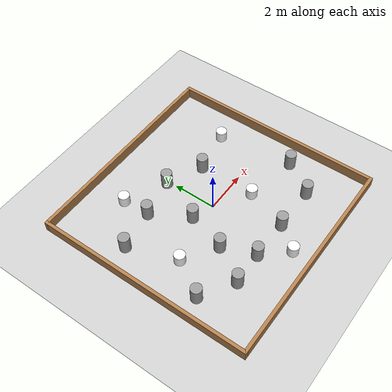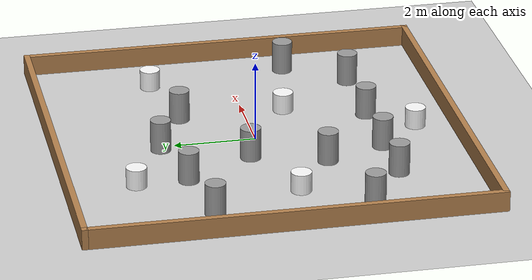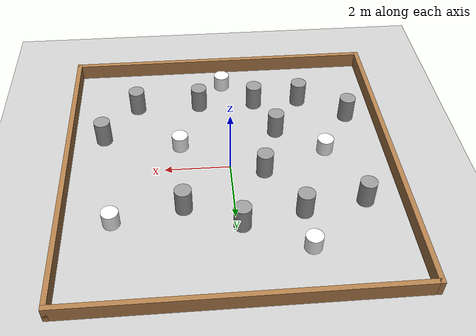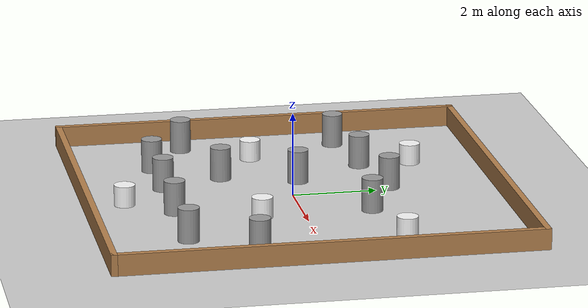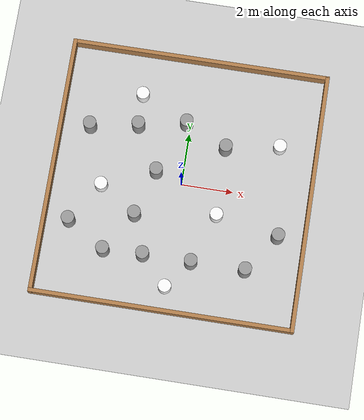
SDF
<sdf version="1.7">
 <world name="default">
  <light name="sun" type="directional">
   <pose>0 0 10 0 -0 0</pose>
   <diffuse>0.8 0.8 0.8 1</diffuse>
   <specular>0.2 0.2 0.2 1</specular>
   <attenuation>
    <range>1000</range>
    <constant>0.9</constant>
    <linear>0.01</linear>
    <quadratic>0.001</quadratic>
   </attenuation>
   <direction>-0.5 0.1 -0.9</direction>
   <spot><inner_angle>0</inner_angle><outer_angle>0</outer_angle><falloff>0</falloff></spot>
  </light>
  <model name="ground_plane">
   <static>1</static>
   <link name="link">
    <collision name="collision">
     <geometry><plane><normal>0 0 1</normal><size>100 100</size></plane></geometry>
     <surface>
      <contact><collide_bitmask>65535</collide_bitmask></contact>
      <friction><ode><mu>100</mu><mu2>50</mu2></ode></friction>
     </surface>
    </collision>
    <visual name="visual">
     <cast_shadows>0</cast_shadows>
     <geometry><plane><normal>0 0 1</normal><size>100 100</size></plane></geometry>
     <material>
      <script><uri>file://media/materials/scripts/gazebo.material</uri><name>Gazebo/Grey</name></script>
     </material>
    </visual>
   </link>
  </model>
  <gravity>0 0 -9.8</gravity>
  <magnetic_field>6e-06 2.3e-05 -4.2e-05</magnetic_field>
  <atmosphere type="adiabatic"/>
  <physics type="ode">
   <max_step_size>0.001</max_step_size>
   <real_time_factor>1</real_time_factor>
   <real_time_update_rate>1000</real_time_update_rate>
  </physics>
  <scene><ambient>0.4 0.4 0.4 1</ambient><background>0.7 0.7 0.7 1</background><shadows>1</shadows></scene>
  <audio><device>default</device></audio>
  <spherical_coordinates>
   <surface_model>EARTH_WGS84</surface_model>
   <latitude_deg>0</latitude_deg>
   <longitude_deg>0</longitude_deg>
   <elevation>0</elevation>
   <heading_deg>0</heading_deg>
  </spherical_coordinates>
  <model name="wall_square10x10">
   <pose>0 1.25 0 0 -0 0</pose>
   <link name="Wall_10">
    <collision name="Wall_10_Collision">
     <geometry><box><size>10 0.15 0.5</size></box></geometry>
     <pose>0 0 0.25 0 -0 0</pose>
    </collision>
    <visual name="Wall_10_Visual">
     <pose>0 0 0.25 0 -0 0</pose>
     <geometry><box><size>10 0.15 0.5</size></box></geometry>
     <material>
      <script><uri>file://media/materials/scripts/gazebo.material</uri><name>Gazebo/Wood</name></script>
      <ambient>1 1 1 1</ambient>
     </material>
     <meta><layer>0</layer></meta>
    </visual>
    <pose>0 -6.183 0 0 -0 3.14159</pose>
   </link>
   <link name="Wall_6">
    <collision name="Wall_6_Collision">
     <geometry><box><size>10 0.15 0.5</size></box></geometry>
     <pose>0 0 0.25 0 -0 0</pose>
    </collision>
    <visual name="Wall_6_Visual">
     <pose>0 0 0.25 0 -0 0</pose>
     <geometry><box><size>10 0.15 0.5</size></box></geometry>
     <material>
      <script><uri>file://media/materials/scripts/gazebo.material</uri><name>Gazebo/Wood</name></script>
      <ambient>1 1 1 1</ambient>
     </material>
     <meta><layer>0</layer></meta>
    </visual>
    <pose>-4.925 -1.258 0 0 -0 -1.5708</pose>
   </link>
   <link name="Wall_8">
    <collision name="Wall_8_Collision">
     <geometry><box><size>10 0.15 0.5</size></box></geometry>
     <pose>0 0 0.25 0 -0 0</pose>
    </collision>
    <visual name="Wall_8_Visual">
     <pose>0 0 0.25 0 -0 0</pose>
     <geometry><box><size>10 0.15 0.5</size></box></geometry>
     <material>
      <script><uri>file://media/materials/scripts/gazebo.material</uri><name>Gazebo/Wood</name></script>
      <ambient>1 1 1 1</ambient>
     </material>
     <meta><layer>0</layer></meta>
    </visual>
    <pose>0 3.667 0 0 -0 0</pose>
   </link>
   <link name="Wall_9">
    <collision name="Wall_9_Collision">
     <geometry><box><size>10 0.15 0.5</size></box></geometry>
     <pose>0 0 0.25 0 -0 0</pose>
    </collision>
    <visual name="Wall_9_Visual">
     <pose>0 0 0.25 0 -0 0</pose>
     <geometry><box><size>10 0.15 0.5</size></box></geometry>
     <material>
      <script><uri>file://media/materials/scripts/gazebo.material</uri><name>Gazebo/Wood</name></script>
      <ambient>1 1 1 1</ambient>
     </material>
     <meta><layer>0</layer></meta>
    </visual>
    <pose>4.925 -1.258 0 0 -0 -1.5708</pose>
   </link>
   <static>1</static>
  </model>
  <model name="unit_cylinder">
   <link name="link">
    <inertial>
     <mass>1</mass>
     <inertia><ixx>0.145833</ixx><ixy>0</ixy><ixz>0</ixz><iyy>0.145833</iyy><iyz>0</iyz><izz>0.125</izz></inertia>
    </inertial>
    <pose>0 -0 -0.1 0 -0 0</pose>
    <visual name="visual">
     <geometry><cylinder><radius>0.25</radius><length>0.8</length></cylinder></geometry>
     <material>
      <script><name>Gazebo/Grey</name><uri>file://media/materials/scripts/gazebo.material</uri></script>
      <shader type="pixel"><normal_map>__default__</normal_map></shader>
      <ambient>0.1 0.1 0.1 1</ambient>
      <diffuse>0.7 0.7 0.7 1</diffuse>
      <specular>0.01 0.01 0.01 1</specular>
      <emissive>0 0 0 1</emissive>
     </material>
    </visual>
    <collision name="collision">
     <geometry><cylinder><radius>0.25</radius><length>0.8</length></cylinder></geometry>
     <surface>
      <friction>
       <ode><mu>1</mu><mu2>1</mu2><fdir1>0 0 0</fdir1><slip1>0</slip1><slip2>0</slip2></ode>
       <torsional>
        <coefficient>1</coefficient>
        <patch_radius>0</patch_radius>
        <surface_radius>0</surface_radius>
        <use_patch_radius>1</use_patch_radius>
        <ode><slip>0</slip></ode>
       </torsional>
      </friction>
      <bounce><restitution_coefficient>0</restitution_coefficient><threshold>1e+06</threshold></bounce>
      <contact>
       <collide_without_contact>0</collide_without_contact>
       <collide_without_contact_bitmask>1</collide_without_contact_bitmask>
       <collide_bitmask>1</collide_bitmask>
       <ode>
        <soft_cfm>0</soft_cfm>
        <soft_erp>0.2</soft_erp>
        <kp>1e+13</kp>
        <kd>1</kd>
        <max_vel>0.01</max_vel>
        <min_depth>0</min_depth>
       </ode>
       <bullet>
        <split_impulse>1</split_impulse>
        <split_impulse_penetration_threshold>-0.01</split_impulse_penetration_threshold>
        <soft_cfm>0</soft_cfm>
        <soft_erp>0.2</soft_erp>
        <kp>1e+13</kp>
        <kd>1</kd>
       </bullet>
      </contact>
     </surface>
    </collision>
   </link>
   <static>0</static>
   <pose>-2.51473 -2.98062 0.499992 -1e-06 1e-06 0</pose>
  </model>
  <model name="unit_cylinder_0">
   <link name="link">
    <inertial>
     <mass>1</mass>
     <inertia><ixx>0.145833</ixx><ixy>0</ixy><ixz>0</ixz><iyy>0.145833</iyy><iyz>0</iyz><izz>0.125</izz></inertia>
    </inertial>
    <pose>0 -0 -0.1 0 -0 0</pose>
    <visual name="visual">
     <geometry><cylinder><radius>0.25</radius><length>0.8</length></cylinder></geometry>
     <material>
      <script><name>Gazebo/Grey</name><uri>file://media/materials/scripts/gazebo.material</uri></script>
      <shader type="pixel"><normal_map>__default__</normal_map></shader>
      <ambient>0.1 0.1 0.1 1</ambient>
      <diffuse>0.7 0.7 0.7 1</diffuse>
      <specular>0.01 0.01 0.01 1</specular>
      <emissive>0 0 0 1</emissive>
     </material>
    </visual>
    <collision name="collision">
     <geometry><cylinder><radius>0.25</radius><length>0.8</length></cylinder></geometry>
     <surface>
      <friction>
       <ode><mu>1</mu><mu2>1</mu2><fdir1>0 0 0</fdir1><slip1>0</slip1><slip2>0</slip2></ode>
       <torsional>
        <coefficient>1</coefficient>
        <patch_radius>0</patch_radius>
        <surface_radius>0</surface_radius>
        <use_patch_radius>1</use_patch_radius>
        <ode><slip>0</slip></ode>
       </torsional>
      </friction>
      <bounce><restitution_coefficient>0</restitution_coefficient><threshold>1e+06</threshold></bounce>
      <contact>
       <collide_without_contact>0</collide_without_contact>
       <collide_without_contact_bitmask>1</collide_without_contact_bitmask>
       <collide_bitmask>1</collide_bitmask>
       <ode>
        <soft_cfm>0</soft_cfm>
        <soft_erp>0.2</soft_erp>
        <kp>1e+13</kp>
        <kd>1</kd>
        <max_vel>0.01</max_vel>
        <min_depth>0</min_depth>
       </ode>
       <bullet>
        <split_impulse>1</split_impulse>
        <split_impulse_penetration_threshold>-0.01</split_impulse_penetration_threshold>
        <soft_cfm>0</soft_cfm>
        <soft_erp>0.2</soft_erp>
        <kp>1e+13</kp>
        <kd>1</kd>
       </bullet>
      </contact>
     </surface>
    </collision>
   </link>
   <static>0</static>
   <pose>-1.00966 -2.93541 0.499992 -1e-06 1e-06 0</pose>
  </model>
  <model name="unit_cylinder_1">
   <link name="link">
    <inertial>
     <mass>1</mass>
     <inertia><ixx>0.145833</ixx><ixy>0</ixy><ixz>0</ixz><iyy>0.145833</iyy><iyz>0</iyz><izz>0.125</izz></inertia>
    </inertial>
    <pose>0 -0 -0.1 0 -0 0</pose>
    <visual name="visual">
     <geometry><cylinder><radius>0.25</radius><length>0.8</length></cylinder></geometry>
     <material>
      <script><name>Gazebo/Grey</name><uri>file://media/materials/scripts/gazebo.material</uri></script>
      <shader type="pixel"><normal_map>__default__</normal_map></shader>
      <ambient>0.1 0.1 0.1 1</ambient>
      <diffuse>0.7 0.7 0.7 1</diffuse>
      <specular>0.01 0.01 0.01 1</specular>
      <emissive>0 0 0 1</emissive>
     </material>
    </visual>
    <collision name="collision">
     <geometry><cylinder><radius>0.25</radius><length>0.8</length></cylinder></geometry>
     <surface>
      <friction>
       <ode><mu>1</mu><mu2>1</mu2><fdir1>0 0 0</fdir1><slip1>0</slip1><slip2>0</slip2></ode>
       <torsional>
        <coefficient>1</coefficient>
        <patch_radius>0</patch_radius>
        <surface_radius>0</surface_radius>
        <use_patch_radius>1</use_patch_radius>
        <ode><slip>0</slip></ode>
       </torsional>
      </friction>
      <bounce><restitution_coefficient>0</restitution_coefficient><threshold>1e+06</threshold></bounce>
      <contact>
       <collide_without_contact>0</collide_without_contact>
       <collide_without_contact_bitmask>1</collide_without_contact_bitmask>
       <collide_bitmask>1</collide_bitmask>
       <ode>
        <soft_cfm>0</soft_cfm>
        <soft_erp>0.2</soft_erp>
        <kp>1e+13</kp>
        <kd>1</kd>
        <max_vel>0.01</max_vel>
        <min_depth>0</min_depth>
       </ode>
       <bullet>
        <split_impulse>1</split_impulse>
        <split_impulse_penetration_threshold>-0.01</split_impulse_penetration_threshold>
        <soft_cfm>0</soft_cfm>
        <soft_erp>0.2</soft_erp>
        <kp>1e+13</kp>
        <kd>1</kd>
       </bullet>
      </contact>
     </surface>
    </collision>
   </link>
   <static>0</static>
   <pose>0.821013 -2.94461 0.499992 -1e-06 1e-06 0</pose>
  </model>
  <model name="unit_cylinder_2">
   <link name="link">
    <inertial>
     <mass>1</mass>
     <inertia><ixx>0.145833</ixx><ixy>0</ixy><ixz>0</ixz><iyy>0.145833</iyy><iyz>0</iyz><izz>0.125</izz></inertia>
    </inertial>
    <pose>0 -0 -0.1 0 -0 0</pose>
    <visual name="visual">
     <geometry><cylinder><radius>0.25</radius><length>0.8</length></cylinder></geometry>
     <material>
      <script><name>Gazebo/Grey</name><uri>file://media/materials/scripts/gazebo.material</uri></script>
      <shader type="pixel"><normal_map>__default__</normal_map></shader>
      <ambient>0.1 0.1 0.1 1</ambient>
      <diffuse>0.7 0.7 0.7 1</diffuse>
      <specular>0.01 0.01 0.01 1</specular>
      <emissive>0 0 0 1</emissive>
     </material>
    </visual>
    <collision name="collision">
     <geometry><cylinder><radius>0.25</radius><length>0.8</length></cylinder></geometry>
     <surface>
      <friction>
       <ode><mu>1</mu><mu2>1</mu2><fdir1>0 0 0</fdir1><slip1>0</slip1><slip2>0</slip2></ode>
       <torsional>
        <coefficient>1</coefficient>
        <patch_radius>0</patch_radius>
        <surface_radius>0</surface_radius>
        <use_patch_radius>1</use_patch_radius>
        <ode><slip>0</slip></ode>
       </torsional>
      </friction>
      <bounce><restitution_coefficient>0</restitution_coefficient><threshold>1e+06</threshold></bounce>
      <contact>
       <collide_without_contact>0</collide_without_contact>
       <collide_without_contact_bitmask>1</collide_without_contact_bitmask>
       <collide_bitmask>1</collide_bitmask>
       <ode>
        <soft_cfm>0</soft_cfm>
        <soft_erp>0.2</soft_erp>
        <kp>1e+13</kp>
        <kd>1</kd>
        <max_vel>0.01</max_vel>
        <min_depth>0</min_depth>
       </ode>
       <bullet>
        <split_impulse>1</split_impulse>
        <split_impulse_penetration_threshold>-0.01</split_impulse_penetration_threshold>
        <soft_cfm>0</soft_cfm>
        <soft_erp>0.2</soft_erp>
        <kp>1e+13</kp>
        <kd>1</kd>
       </bullet>
      </contact>
     </surface>
    </collision>
   </link>
   <static>0</static>
   <pose>2.86783 -2.94009 0.499992 -1e-06 1e-06 0</pose>
  </model>
  <model name="unit_cylinder_3">
   <link name="link">
    <inertial>
     <mass>1</mass>
     <inertia><ixx>0.145833</ixx><ixy>0</ixy><ixz>0</ixz><iyy>0.145833</iyy><iyz>0</iyz><izz>0.125</izz></inertia>
    </inertial>
    <pose>0 -0 -0.1 0 -0 0</pose>
    <visual name="visual">
     <geometry><cylinder><radius>0.25</radius><length>0.8</length></cylinder></geometry>
     <material>
      <script><name>Gazebo/Grey</name><uri>file://media/materials/scripts/gazebo.material</uri></script>
      <shader type="pixel"><normal_map>__default__</normal_map></shader>
      <ambient>0.1 0.1 0.1 1</ambient>
      <diffuse>0.7 0.7 0.7 1</diffuse>
      <specular>0.01 0.01 0.01 1</specular>
      <emissive>0 0 0 1</emissive>
     </material>
    </visual>
    <collision name="collision">
     <geometry><cylinder><radius>0.25</radius><length>0.8</length></cylinder></geometry>
     <surface>
      <friction>
       <ode><mu>1</mu><mu2>1</mu2><fdir1>0 0 0</fdir1><slip1>0</slip1><slip2>0</slip2></ode>
       <torsional>
        <coefficient>1</coefficient>
        <patch_radius>0</patch_radius>
        <surface_radius>0</surface_radius>
        <use_patch_radius>1</use_patch_radius>
        <ode><slip>0</slip></ode>
       </torsional>
      </friction>
      <bounce><restitution_coefficient>0</restitution_coefficient><threshold>1e+06</threshold></bounce>
      <contact>
       <collide_without_contact>0</collide_without_contact>
       <collide_without_contact_bitmask>1</collide_without_contact_bitmask>
       <collide_bitmask>1</collide_bitmask>
       <ode>
        <soft_cfm>0</soft_cfm>
        <soft_erp>0.2</soft_erp>
        <kp>1e+13</kp>
        <kd>1</kd>
        <max_vel>0.01</max_vel>
        <min_depth>0</min_depth>
       </ode>
       <bullet>
        <split_impulse>1</split_impulse>
        <split_impulse_penetration_threshold>-0.01</split_impulse_penetration_threshold>
        <soft_cfm>0</soft_cfm>
        <soft_erp>0.2</soft_erp>
        <kp>1e+13</kp>
        <kd>1</kd>
       </bullet>
      </contact>
     </surface>
    </collision>
   </link>
   <static>0</static>
   <pose>-3.98097 -2.05423 0.499992 -1e-06 1e-06 0</pose>
  </model>
  <model name="unit_cylinder_4">
   <link name="link">
    <inertial>
     <mass>1</mass>
     <inertia><ixx>0.145833</ixx><ixy>0</ixy><ixz>0</ixz><iyy>0.145833</iyy><iyz>0</iyz><izz>0.125</izz></inertia>
    </inertial>
    <pose>0 -0 -0.1 0 -0 0</pose>
    <visual name="visual">
     <geometry><cylinder><radius>0.25</radius><length>0.8</length></cylinder></geometry>
     <material>
      <script><name>Gazebo/Grey</name><uri>file://media/materials/scripts/gazebo.material</uri></script>
      <shader type="pixel"><normal_map>__default__</normal_map></shader>
      <ambient>0.1 0.1 0.1 1</ambient>
      <diffuse>0.7 0.7 0.7 1</diffuse>
      <specular>0.01 0.01 0.01 1</specular>
      <emissive>0 0 0 1</emissive>
     </material>
    </visual>
    <collision name="collision">
     <geometry><cylinder><radius>0.25</radius><length>0.8</length></cylinder></geometry>
     <surface>
      <friction>
       <ode><mu>1</mu><mu2>1</mu2><fdir1>0 0 0</fdir1><slip1>0</slip1><slip2>0</slip2></ode>
       <torsional>
        <coefficient>1</coefficient>
        <patch_radius>0</patch_radius>
        <surface_radius>0</surface_radius>
        <use_patch_radius>1</use_patch_radius>
        <ode><slip>0</slip></ode>
       </torsional>
      </friction>
      <bounce><restitution_coefficient>0</restitution_coefficient><threshold>1e+06</threshold></bounce>
      <contact>
       <collide_without_contact>0</collide_without_contact>
       <collide_without_contact_bitmask>1</collide_without_contact_bitmask>
       <collide_bitmask>1</collide_bitmask>
       <ode>
        <soft_cfm>0</soft_cfm>
        <soft_erp>0.2</soft_erp>
        <kp>1e+13</kp>
        <kd>1</kd>
        <max_vel>0.01</max_vel>
        <min_depth>0</min_depth>
       </ode>
       <bullet>
        <split_impulse>1</split_impulse>
        <split_impulse_penetration_threshold>-0.01</split_impulse_penetration_threshold>
        <soft_cfm>0</soft_cfm>
        <soft_erp>0.2</soft_erp>
        <kp>1e+13</kp>
        <kd>1</kd>
       </bullet>
      </contact>
     </surface>
    </collision>
   </link>
   <static>0</static>
   <pose>-1.56528 -1.46226 0.499998 1e-06 -1e-06 0</pose>
  </model>
  <model name="unit_cylinder_5">
   <link name="link">
    <inertial>
     <mass>1</mass>
     <inertia><ixx>0.145833</ixx><ixy>0</ixy><ixz>0</ixz><iyy>0.145833</iyy><iyz>0</iyz><izz>0.125</izz></inertia>
    </inertial>
    <pose>0 -0 -0.1 0 -0 0</pose>
    <visual name="visual">
     <geometry><cylinder><radius>0.25</radius><length>0.8</length></cylinder></geometry>
     <material>
      <script><name>Gazebo/Grey</name><uri>file://media/materials/scripts/gazebo.material</uri></script>
      <shader type="pixel"><normal_map>__default__</normal_map></shader>
      <ambient>0.1 0.1 0.1 1</ambient>
      <diffuse>0.7 0.7 0.7 1</diffuse>
      <specular>0.01 0.01 0.01 1</specular>
      <emissive>0 0 0 1</emissive>
     </material>
    </visual>
    <collision name="collision">
     <geometry><cylinder><radius>0.25</radius><length>0.8</length></cylinder></geometry>
     <surface>
      <friction>
       <ode><mu>1</mu><mu2>1</mu2><fdir1>0 0 0</fdir1><slip1>0</slip1><slip2>0</slip2></ode>
       <torsional>
        <coefficient>1</coefficient>
        <patch_radius>0</patch_radius>
        <surface_radius>0</surface_radius>
        <use_patch_radius>1</use_patch_radius>
        <ode><slip>0</slip></ode>
       </torsional>
      </friction>
      <bounce><restitution_coefficient>0</restitution_coefficient><threshold>1e+06</threshold></bounce>
      <contact>
       <collide_without_contact>0</collide_without_contact>
       <collide_without_contact_bitmask>1</collide_without_contact_bitmask>
       <collide_bitmask>1</collide_bitmask>
       <ode>
        <soft_cfm>0</soft_cfm>
        <soft_erp>0.2</soft_erp>
        <kp>1e+13</kp>
        <kd>1</kd>
        <max_vel>0.01</max_vel>
        <min_depth>0</min_depth>
       </ode>
       <bullet>
        <split_impulse>1</split_impulse>
        <split_impulse_penetration_threshold>-0.01</split_impulse_penetration_threshold>
        <soft_cfm>0</soft_cfm>
        <soft_erp>0.2</soft_erp>
        <kp>1e+13</kp>
        <kd>1</kd>
       </bullet>
      </contact>
     </surface>
    </collision>
   </link>
   <static>0</static>
   <pose>-1.01294 0.314688 0.499998 1e-06 1e-06 0</pose>
  </model>
  <model name="unit_cylinder_6">
   <link name="link">
    <inertial>
     <mass>1</mass>
     <inertia><ixx>0.145833</ixx><ixy>0</ixy><ixz>0</ixz><iyy>0.145833</iyy><iyz>0</iyz><izz>0.125</izz></inertia>
    </inertial>
    <pose>0 -0 -0.1 0 -0 0</pose>
    <visual name="visual">
     <geometry><cylinder><radius>0.25</radius><length>0.8</length></cylinder></geometry>
     <material>
      <script><name>Gazebo/Grey</name><uri>file://media/materials/scripts/gazebo.material</uri></script>
      <shader type="pixel"><normal_map>__default__</normal_map></shader>
      <ambient>0.1 0.1 0.1 1</ambient>
      <diffuse>0.7 0.7 0.7 1</diffuse>
      <specular>0.01 0.01 0.01 1</specular>
      <emissive>0 0 0 1</emissive>
     </material>
    </visual>
    <collision name="collision">
     <geometry><cylinder><radius>0.25</radius><length>0.8</length></cylinder></geometry>
     <surface>
      <friction>
       <ode><mu>1</mu><mu2>1</mu2><fdir1>0 0 0</fdir1><slip1>0</slip1><slip2>0</slip2></ode>
       <torsional>
        <coefficient>1</coefficient>
        <patch_radius>0</patch_radius>
        <surface_radius>0</surface_radius>
        <use_patch_radius>1</use_patch_radius>
        <ode><slip>0</slip></ode>
       </torsional>
      </friction>
      <bounce><restitution_coefficient>0</restitution_coefficient><threshold>1e+06</threshold></bounce>
      <contact>
       <collide_without_contact>0</collide_without_contact>
       <collide_without_contact_bitmask>1</collide_without_contact_bitmask>
       <collide_bitmask>1</collide_bitmask>
       <ode>
        <soft_cfm>0</soft_cfm>
        <soft_erp>0.2</soft_erp>
        <kp>1e+13</kp>
        <kd>1</kd>
        <max_vel>0.01</max_vel>
        <min_depth>0</min_depth>
       </ode>
       <bullet>
        <split_impulse>1</split_impulse>
        <split_impulse_penetration_threshold>-0.01</split_impulse_penetration_threshold>
        <soft_cfm>0</soft_cfm>
        <soft_erp>0.2</soft_erp>
        <kp>1e+13</kp>
        <kd>1</kd>
       </bullet>
      </contact>
     </surface>
    </collision>
   </link>
   <static>0</static>
   <pose>-1.96722 1.99343 0.499992 -1e-06 -1e-06 0</pose>
  </model>
  <model name="unit_cylinder_7">
   <link name="link">
    <inertial>
     <mass>1</mass>
     <inertia><ixx>0.145833</ixx><ixy>0</ixy><ixz>0</ixz><iyy>0.145833</iyy><iyz>0</iyz><izz>0.125</izz></inertia>
    </inertial>
    <pose>0 -0 -0.1 0 -0 0</pose>
    <visual name="visual">
     <geometry><cylinder><radius>0.25</radius><length>0.8</length></cylinder></geometry>
     <material>
      <script><name>Gazebo/Grey</name><uri>file://media/materials/scripts/gazebo.material</uri></script>
      <shader type="pixel"><normal_map>__default__</normal_map></shader>
      <ambient>0.1 0.1 0.1 1</ambient>
      <diffuse>0.7 0.7 0.7 1</diffuse>
      <specular>0.01 0.01 0.01 1</specular>
      <emissive>0 0 0 1</emissive>
     </material>
    </visual>
    <collision name="collision">
     <geometry><cylinder><radius>0.25</radius><length>0.8</length></cylinder></geometry>
     <surface>
      <friction>
       <ode><mu>1</mu><mu2>1</mu2><fdir1>0 0 0</fdir1><slip1>0</slip1><slip2>0</slip2></ode>
       <torsional>
        <coefficient>1</coefficient>
        <patch_radius>0</patch_radius>
        <surface_radius>0</surface_radius>
        <use_patch_radius>1</use_patch_radius>
        <ode><slip>0</slip></ode>
       </torsional>
      </friction>
      <bounce><restitution_coefficient>0</restitution_coefficient><threshold>1e+06</threshold></bounce>
      <contact>
       <collide_without_contact>0</collide_without_contact>
       <collide_without_contact_bitmask>1</collide_without_contact_bitmask>
       <collide_bitmask>1</collide_bitmask>
       <ode>
        <soft_cfm>0</soft_cfm>
        <soft_erp>0.2</soft_erp>
        <kp>1e+13</kp>
        <kd>1</kd>
        <max_vel>0.01</max_vel>
        <min_depth>0</min_depth>
       </ode>
       <bullet>
        <split_impulse>1</split_impulse>
        <split_impulse_penetration_threshold>-0.01</split_impulse_penetration_threshold>
        <soft_cfm>0</soft_cfm>
        <soft_erp>0.2</soft_erp>
        <kp>1e+13</kp>
        <kd>1</kd>
       </bullet>
      </contact>
     </surface>
    </collision>
   </link>
   <static>0</static>
   <pose>-3.79274 1.69817 0.499998 1e-06 1e-06 0</pose>
  </model>
  <model name="unit_cylinder_8">
   <link name="link">
    <inertial>
     <mass>1</mass>
     <inertia><ixx>0.145833</ixx><ixy>0</ixy><ixz>0</ixz><iyy>0.145833</iyy><iyz>0</iyz><izz>0.125</izz></inertia>
    </inertial>
    <pose>0 -0 -0.1 0 -0 0</pose>
    <visual name="visual">
     <geometry><cylinder><radius>0.25</radius><length>0.8</length></cylinder></geometry>
     <material>
      <script><name>Gazebo/Grey</name><uri>file://media/materials/scripts/gazebo.material</uri></script>
      <shader type="pixel"><normal_map>__default__</normal_map></shader>
      <ambient>0.1 0.1 0.1 1</ambient>
      <diffuse>0.7 0.7 0.7 1</diffuse>
      <specular>0.01 0.01 0.01 1</specular>
      <emissive>0 0 0 1</emissive>
     </material>
    </visual>
    <collision name="collision">
     <geometry><cylinder><radius>0.25</radius><length>0.8</length></cylinder></geometry>
     <surface>
      <friction>
       <ode><mu>1</mu><mu2>1</mu2><fdir1>0 0 0</fdir1><slip1>0</slip1><slip2>0</slip2></ode>
       <torsional>
        <coefficient>1</coefficient>
        <patch_radius>0</patch_radius>
        <surface_radius>0</surface_radius>
        <use_patch_radius>1</use_patch_radius>
        <ode><slip>0</slip></ode>
       </torsional>
      </friction>
      <bounce><restitution_coefficient>0</restitution_coefficient><threshold>1e+06</threshold></bounce>
      <contact>
       <collide_without_contact>0</collide_without_contact>
       <collide_without_contact_bitmask>1</collide_without_contact_bitmask>
       <collide_bitmask>1</collide_bitmask>
       <ode>
        <soft_cfm>0</soft_cfm>
        <soft_erp>0.2</soft_erp>
        <kp>1e+13</kp>
        <kd>1</kd>
        <max_vel>0.01</max_vel>
        <min_depth>0</min_depth>
       </ode>
       <bullet>
        <split_impulse>1</split_impulse>
        <split_impulse_penetration_threshold>-0.01</split_impulse_penetration_threshold>
        <soft_cfm>0</soft_cfm>
        <soft_erp>0.2</soft_erp>
        <kp>1e+13</kp>
        <kd>1</kd>
       </bullet>
      </contact>
     </surface>
    </collision>
   </link>
   <static>0</static>
   <pose>3.90256 -1.48192 0.499992 -1e-06 -1e-06 0</pose>
  </model>
  <model name="unit_cylinder_9">
   <link name="link">
    <inertial>
     <mass>1</mass>
     <inertia><ixx>0.145833</ixx><ixy>0</ixy><ixz>0</ixz><iyy>0.145833</iyy><iyz>0</iyz><izz>0.125</izz></inertia>
    </inertial>
    <pose>0 -0 -0.1 0 -0 0</pose>
    <visual name="visual">
     <geometry><cylinder><radius>0.25</radius><length>0.8</length></cylinder></geometry>
     <material>
      <script><name>Gazebo/Grey</name><uri>file://media/materials/scripts/gazebo.material</uri></script>
      <shader type="pixel"><normal_map>__default__</normal_map></shader>
      <ambient>0.1 0.1 0.1 1</ambient>
      <diffuse>0.7 0.7 0.7 1</diffuse>
      <specular>0.01 0.01 0.01 1</specular>
      <emissive>0 0 0 1</emissive>
     </material>
    </visual>
    <collision name="collision">
     <geometry><cylinder><radius>0.25</radius><length>0.8</length></cylinder></geometry>
     <surface>
      <friction>
       <ode><mu>1</mu><mu2>1</mu2><fdir1>0 0 0</fdir1><slip1>0</slip1><slip2>0</slip2></ode>
       <torsional>
        <coefficient>1</coefficient>
        <patch_radius>0</patch_radius>
        <surface_radius>0</surface_radius>
        <use_patch_radius>1</use_patch_radius>
        <ode><slip>0</slip></ode>
       </torsional>
      </friction>
      <bounce><restitution_coefficient>0</restitution_coefficient><threshold>1e+06</threshold></bounce>
      <contact>
       <collide_without_contact>0</collide_without_contact>
       <collide_without_contact_bitmask>1</collide_without_contact_bitmask>
       <collide_bitmask>1</collide_bitmask>
       <ode>
        <soft_cfm>0</soft_cfm>
        <soft_erp>0.2</soft_erp>
        <kp>1e+13</kp>
        <kd>1</kd>
        <max_vel>0.01</max_vel>
        <min_depth>0</min_depth>
       </ode>
       <bullet>
        <split_impulse>1</split_impulse>
        <split_impulse_penetration_threshold>-0.01</split_impulse_penetration_threshold>
        <soft_cfm>0</soft_cfm>
        <soft_erp>0.2</soft_erp>
        <kp>1e+13</kp>
        <kd>1</kd>
       </bullet>
      </contact>
     </surface>
    </collision>
   </link>
   <static>0</static>
   <pose>1.45904 1.61051 0.499998 1e-06 1e-06 0</pose>
  </model>
  <model name="unit_cylinder_10">
   <link name="link">
    <inertial>
     <mass>1</mass>
     <inertia><ixx>0.145833</ixx><ixy>0</ixy><ixz>0</ixz><iyy>0.145833</iyy><iyz>0</iyz><izz>0.125</izz></inertia>
    </inertial>
    <pose>0 -0 -0.1 0 -0 0</pose>
    <visual name="visual">
     <geometry><cylinder><radius>0.25</radius><length>0.8</length></cylinder></geometry>
     <material>
      <script><name>Gazebo/Grey</name><uri>file://media/materials/scripts/gazebo.material</uri></script>
      <shader type="pixel"><normal_map>__default__</normal_map></shader>
      <ambient>0.1 0.1 0.1 1</ambient>
      <diffuse>0.7 0.7 0.7 1</diffuse>
      <specular>0.01 0.01 0.01 1</specular>
      <emissive>0 0 0 1</emissive>
     </material>
    </visual>
    <collision name="collision">
     <geometry><cylinder><radius>0.25</radius><length>0.8</length></cylinder></geometry>
     <surface>
      <friction>
       <ode><mu>1</mu><mu2>1</mu2><fdir1>0 0 0</fdir1><slip1>0</slip1><slip2>0</slip2></ode>
       <torsional>
        <coefficient>1</coefficient>
        <patch_radius>0</patch_radius>
        <surface_radius>0</surface_radius>
        <use_patch_radius>1</use_patch_radius>
        <ode><slip>0</slip></ode>
       </torsional>
      </friction>
      <bounce><restitution_coefficient>0</restitution_coefficient><threshold>1e+06</threshold></bounce>
      <contact>
       <collide_without_contact>0</collide_without_contact>
       <collide_without_contact_bitmask>1</collide_without_contact_bitmask>
       <collide_bitmask>1</collide_bitmask>
       <ode>
        <soft_cfm>0</soft_cfm>
        <soft_erp>0.2</soft_erp>
        <kp>1e+13</kp>
        <kd>1</kd>
        <max_vel>0.01</max_vel>
        <min_depth>0</min_depth>
       </ode>
       <bullet>
        <split_impulse>1</split_impulse>
        <split_impulse_penetration_threshold>-0.01</split_impulse_penetration_threshold>
        <soft_cfm>0</soft_cfm>
        <soft_erp>0.2</soft_erp>
        <kp>1e+13</kp>
        <kd>1</kd>
       </bullet>
      </contact>
     </surface>
    </collision>
   </link>
   <static>0</static>
   <pose>-0.15671 2.35426 0.499991 0 -0 0</pose>
  </model>
  <model name="moving_white_cylinder">
   <link name="link">
    <inertial>
     <mass>1</mass>
     <inertia><ixx>0.145833</ixx><ixy>0</ixy><ixz>0</ixz><iyy>0.145833</iyy><iyz>0</iyz><izz>0.125</izz></inertia>
    </inertial>
    <visual name="visual">
     <geometry><cylinder><radius>0.25</radius><length>0.5</length></cylinder></geometry>
     <material>
      <script><name>Gazebo/Pedestrian</name><uri>file://media/materials/scripts/gazebo.material</uri></script>
      <shader type="pixel"><normal_map>__default__</normal_map></shader>
      <ambient>0.98 0.98 0.98 1</ambient>
      <diffuse>0.976 0.976 0.976 1</diffuse>
      <specular>0.976 0.976 0.976 1</specular>
      <emissive>0.976 0.976 0.976 1</emissive>
     </material>
     <pose>0 0 -0.25 0 -0 0</pose>
    </visual>
    <collision name="collision">
     <pose>0 0 -0.25 0 -0 0</pose>
     <geometry><cylinder><radius>0.25</radius><length>0.5</length></cylinder></geometry>
     <surface>
      <friction>
       <ode><mu>1</mu><mu2>1</mu2><fdir1>0 0 0</fdir1><slip1>0</slip1><slip2>0</slip2></ode>
       <torsional>
        <coefficient>1</coefficient>
        <patch_radius>0</patch_radius>
        <surface_radius>0</surface_radius>
        <use_patch_radius>1</use_patch_radius>
        <ode><slip>0</slip></ode>
       </torsional>
      </friction>
      <bounce><restitution_coefficient>0</restitution_coefficient><threshold>1e+06</threshold></bounce>
      <contact>
       <collide_without_contact>0</collide_without_contact>
       <collide_without_contact_bitmask>1</collide_without_contact_bitmask>
       <collide_bitmask>1</collide_bitmask>
       <ode>
        <soft_cfm>0</soft_cfm>
        <soft_erp>0.2</soft_erp>
        <kp>1e+13</kp>
        <kd>1</kd>
        <max_vel>0.01</max_vel>
        <min_depth>0</min_depth>
       </ode>
       <bullet>
        <split_impulse>1</split_impulse>
        <split_impulse_penetration_threshold>-0.01</split_impulse_penetration_threshold>
        <soft_cfm>0</soft_cfm>
        <soft_erp>0.2</soft_erp>
        <kp>1e+13</kp>
        <kd>1</kd>
       </bullet>
      </contact>
     </surface>
    </collision>
   </link>
   <static>0</static>
   <pose>-3 -0.5 0.499998 -1e-06 1e-06 -3e-06</pose>
   <plugin name="dyn_obst_plugin" filename="libdyn_obst_plugin.so">
    <axis>y</axis>
    <amplitude>1.5</amplitude>
    <frequency>0.75</frequency>
   </plugin>
  </model>
  <model name="moving_white_cylinder_0">
   <link name="link">
    <inertial>
     <mass>1</mass>
     <inertia><ixx>0.145833</ixx><ixy>0</ixy><ixz>0</ixz><iyy>0.145833</iyy><iyz>0</iyz><izz>0.125</izz></inertia>
    </inertial>
    <visual name="visual">
     <geometry><cylinder><radius>0.25</radius><length>0.5</length></cylinder></geometry>
     <material>
      <script><name>Gazebo/Pedestrian</name><uri>file://media/materials/scripts/gazebo.material</uri></script>
      <shader type="pixel"><normal_map>__default__</normal_map></shader>
      <ambient>0.98 0.98 0.98 1</ambient>
      <diffuse>0.976 0.976 0.976 1</diffuse>
      <specular>0.976 0.976 0.976 1</specular>
      <emissive>0.976 0.976 0.976 1</emissive>
     </material>
     <pose>0 0 -0.25 0 -0 0</pose>
    </visual>
    <collision name="collision">
     <pose>0 0 -0.25 0 -0 0</pose>
     <geometry><cylinder><radius>0.25</radius><length>0.5</length></cylinder></geometry>
     <surface>
      <friction>
       <ode><mu>1</mu><mu2>1</mu2><fdir1>0 0 0</fdir1><slip1>0</slip1><slip2>0</slip2></ode>
       <torsional>
        <coefficient>1</coefficient>
        <patch_radius>0</patch_radius>
        <surface_radius>0</surface_radius>
        <use_patch_radius>1</use_patch_radius>
        <ode><slip>0</slip></ode>
       </torsional>
      </friction>
      <bounce><restitution_coefficient>0</restitution_coefficient><threshold>1e+06</threshold></bounce>
      <contact>
       <collide_without_contact>0</collide_without_contact>
       <collide_without_contact_bitmask>1</collide_without_contact_bitmask>
       <collide_bitmask>1</collide_bitmask>
       <ode>
        <soft_cfm>0</soft_cfm>
        <soft_erp>0.2</soft_erp>
        <kp>1e+13</kp>
        <kd>1</kd>
        <max_vel>0.01</max_vel>
        <min_depth>0</min_depth>
       </ode>
       <bullet>
        <split_impulse>1</split_impulse>
        <split_impulse_penetration_threshold>-0.01</split_impulse_penetration_threshold>
        <soft_cfm>0</soft_cfm>
        <soft_erp>0.2</soft_erp>
        <kp>1e+13</kp>
        <kd>1</kd>
       </bullet>
      </contact>
     </surface>
    </collision>
   </link>
   <static>0</static>
   <pose>-0 -4 0.499998 0 -0 0</pose>
   <plugin name="dyn_obst_plugin" filename="libdyn_obst_plugin.so">
    <axis>x</axis>
    <amplitude>3.0</amplitude>
    <frequency>1.0</frequency>
   </plugin>
  </model>
  <model name="moving_white_cylinder_1">
   <link name="link">
    <inertial>
     <mass>1</mass>
     <inertia><ixx>0.145833</ixx><ixy>0</ixy><ixz>0</ixz><iyy>0.145833</iyy><iyz>0</iyz><izz>0.125</izz></inertia>
    </inertial>
    <visual name="visual">
     <geometry><cylinder><radius>0.25</radius><length>0.5</length></cylinder></geometry>
     <material>
      <script><name>Gazebo/Pedestrian</name><uri>file://media/materials/scripts/gazebo.material</uri></script>
      <shader type="pixel"><normal_map>__default__</normal_map></shader>
      <ambient>0.98 0.98 0.98 1</ambient>
      <diffuse>0.976 0.976 0.976 1</diffuse>
      <specular>0.976 0.976 0.976 1</specular>
      <emissive>0.976 0.976 0.976 1</emissive>
     </material>
     <pose>0 0 -0.25 0 -0 0</pose>
    </visual>
    <collision name="collision">
     <pose>0 0 -0.25 0 -0 0</pose>
     <geometry><cylinder><radius>0.25</radius><length>0.5</length></cylinder></geometry>
     <surface>
      <friction>
       <ode><mu>1</mu><mu2>1</mu2><fdir1>0 0 0</fdir1><slip1>0</slip1><slip2>0</slip2></ode>
       <torsional>
        <coefficient>1</coefficient>
        <patch_radius>0</patch_radius>
        <surface_radius>0</surface_radius>
        <use_patch_radius>1</use_patch_radius>
        <ode><slip>0</slip></ode>
       </torsional>
      </friction>
      <bounce><restitution_coefficient>0</restitution_coefficient><threshold>1e+06</threshold></bounce>
      <contact>
       <collide_without_contact>0</collide_without_contact>
       <collide_without_contact_bitmask>1</collide_without_contact_bitmask>
       <collide_bitmask>1</collide_bitmask>
       <ode>
        <soft_cfm>0</soft_cfm>
        <soft_erp>0.2</soft_erp>
        <kp>1e+13</kp>
        <kd>1</kd>
        <max_vel>0.01</max_vel>
        <min_depth>0</min_depth>
       </ode>
       <bullet>
        <split_impulse>1</split_impulse>
        <split_impulse_penetration_threshold>-0.01</split_impulse_penetration_threshold>
        <soft_cfm>0</soft_cfm>
        <soft_erp>0.2</soft_erp>
        <kp>1e+13</kp>
        <kd>1</kd>
       </bullet>
      </contact>
     </surface>
    </collision>
   </link>
   <static>0</static>
   <pose>1.5 -1 0.499998 -1e-06 0 -3e-06</pose>
   <plugin name="dyn_obst_plugin" filename="libdyn_obst_plugin.so">
    <axis>y</axis>
    <amplitude>1.0</amplitude>
    <frequency>-0.75</frequency>
    <angle>33.69</angle>
   </plugin>
  </model>
  <model name="moving_white_cylinder_2">
   <link name="link">
    <inertial>
     <mass>1</mass>
     <inertia><ixx>0.145833</ixx><ixy>0</ixy><ixz>0</ixz><iyy>0.145833</iyy><iyz>0</iyz><izz>0.125</izz></inertia>
    </inertial>
    <visual name="visual">
     <geometry><cylinder><radius>0.25</radius><length>0.5</length></cylinder></geometry>
     <material>
      <script><name>Gazebo/Pedestrian</name><uri>file://media/materials/scripts/gazebo.material</uri></script>
      <shader type="pixel"><normal_map>__default__</normal_map></shader>
      <ambient>0.98 0.98 0.98 1</ambient>
      <diffuse>0.976 0.976 0.976 1</diffuse>
      <specular>0.976 0.976 0.976 1</specular>
      <emissive>0.976 0.976 0.976 1</emissive>
     </material>
     <pose>0 0 -0.25 0 -0 0</pose>
    </visual>
    <collision name="collision">
     <pose>0 0 -0.25 0 -0 0</pose>
     <geometry><cylinder><radius>0.25</radius><length>0.5</length></cylinder></geometry>
     <surface>
      <friction>
       <ode><mu>1</mu><mu2>1</mu2><fdir1>0 0 0</fdir1><slip1>0</slip1><slip2>0</slip2></ode>
       <torsional>
        <coefficient>1</coefficient>
        <patch_radius>0</patch_radius>
        <surface_radius>0</surface_radius>
        <use_patch_radius>1</use_patch_radius>
        <ode><slip>0</slip></ode>
       </torsional>
      </friction>
      <bounce><restitution_coefficient>0</restitution_coefficient><threshold>1e+06</threshold></bounce>
      <contact>
       <collide_without_contact>0</collide_without_contact>
       <collide_without_contact_bitmask>1</collide_without_contact_bitmask>
       <collide_bitmask>1</collide_bitmask>
       <ode>
        <soft_cfm>0</soft_cfm>
        <soft_erp>0.2</soft_erp>
        <kp>1e+13</kp>
        <kd>1</kd>
        <max_vel>0.01</max_vel>
        <min_depth>0</min_depth>
       </ode>
       <bullet>
        <split_impulse>1</split_impulse>
        <split_impulse_penetration_threshold>-0.01</split_impulse_penetration_threshold>
        <soft_cfm>0</soft_cfm>
        <soft_erp>0.2</soft_erp>
        <kp>1e+13</kp>
        <kd>1</kd>
       </bullet>
      </contact>
     </surface>
    </collision>
   </link>
   <static>0</static>
   <pose>3.5 2 0.499998 -2e-06 1e-06 -2e-06</pose>
   <plugin name="dyn_obst_plugin" filename="libdyn_obst_plugin.so">
    <axis>y</axis>
    <amplitude>1.0</amplitude>
    <frequency>0.75</frequency>
   </plugin>
  </model>
  <model name="moving_white_cylinder_3">
   <link name="link">
    <inertial>
     <mass>1</mass>
     <inertia><ixx>0.145833</ixx><ixy>0</ixy><ixz>0</ixz><iyy>0.145833</iyy><iyz>0</iyz><izz>0.125</izz></inertia>
    </inertial>
    <visual name="visual">
     <geometry><cylinder><radius>0.25</radius><length>0.5</length></cylinder></geometry>
     <material>
      <script><name>Gazebo/Pedestrian</name><uri>file://media/materials/scripts/gazebo.material</uri></script>
      <shader type="pixel"><normal_map>__default__</normal_map></shader>
      <ambient>0.98 0.98 0.98 1</ambient>
      <diffuse>0.976 0.976 0.976 1</diffuse>
      <specular>0.976 0.976 0.976 1</specular>
      <emissive>0.976 0.976 0.976 1</emissive>
     </material>
     <pose>0 0 -0.25 0 -0 0</pose>
    </visual>
    <collision name="collision">
     <pose>0 0 -0.25 0 -0 0</pose>
     <geometry><cylinder><radius>0.25</radius><length>0.5</length></cylinder></geometry>
     <surface>
      <friction>
       <ode><mu>1</mu><mu2>1</mu2><fdir1>0 0 0</fdir1><slip1>0</slip1><slip2>0</slip2></ode>
       <torsional>
        <coefficient>1</coefficient>
        <patch_radius>0</patch_radius>
        <surface_radius>0</surface_radius>
        <use_patch_radius>1</use_patch_radius>
        <ode><slip>0</slip></ode>
       </torsional>
      </friction>
      <bounce><restitution_coefficient>0</restitution_coefficient><threshold>1e+06</threshold></bounce>
      <contact>
       <collide_without_contact>0</collide_without_contact>
       <collide_without_contact_bitmask>1</collide_without_contact_bitmask>
       <collide_bitmask>1</collide_bitmask>
       <ode>
        <soft_cfm>0</soft_cfm>
        <soft_erp>0.2</soft_erp>
        <kp>1e+13</kp>
        <kd>1</kd>
        <max_vel>0.01</max_vel>
        <min_depth>0</min_depth>
       </ode>
       <bullet>
        <split_impulse>1</split_impulse>
        <split_impulse_penetration_threshold>-0.01</split_impulse_penetration_threshold>
        <soft_cfm>0</soft_cfm>
        <soft_erp>0.2</soft_erp>
        <kp>1e+13</kp>
        <kd>1</kd>
       </bullet>
      </contact>
     </surface>
    </collision>
   </link>
   <static>0</static>
   <pose>-2 3.25 0.499999 -1e-06 1e-06 -2e-06</pose>
   <plugin name="dyn_obst_plugin" filename="libdyn_obst_plugin.so">
    <axis>x</axis>
    <amplitude>1.5</amplitude>
    <frequency>-0.75</frequency>
   </plugin>
  </model>
 </world>
</sdf>
